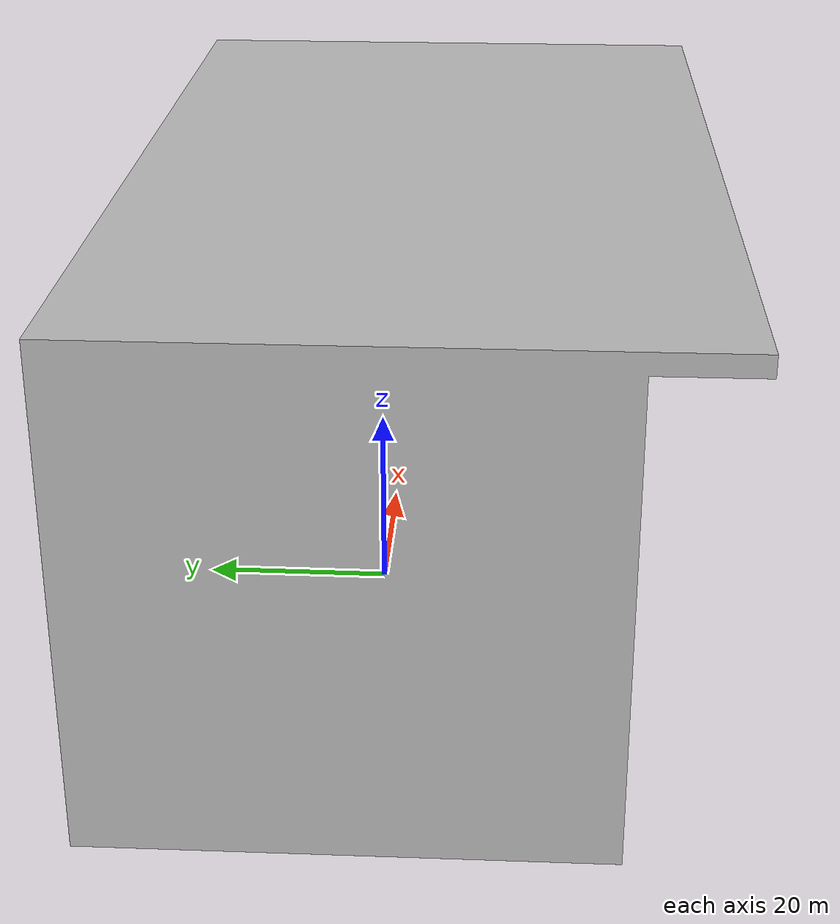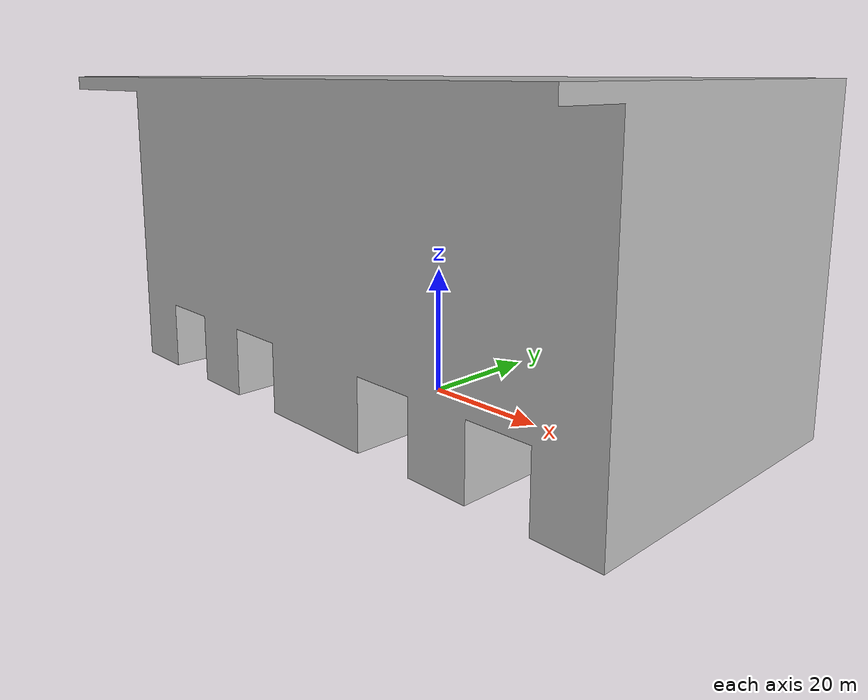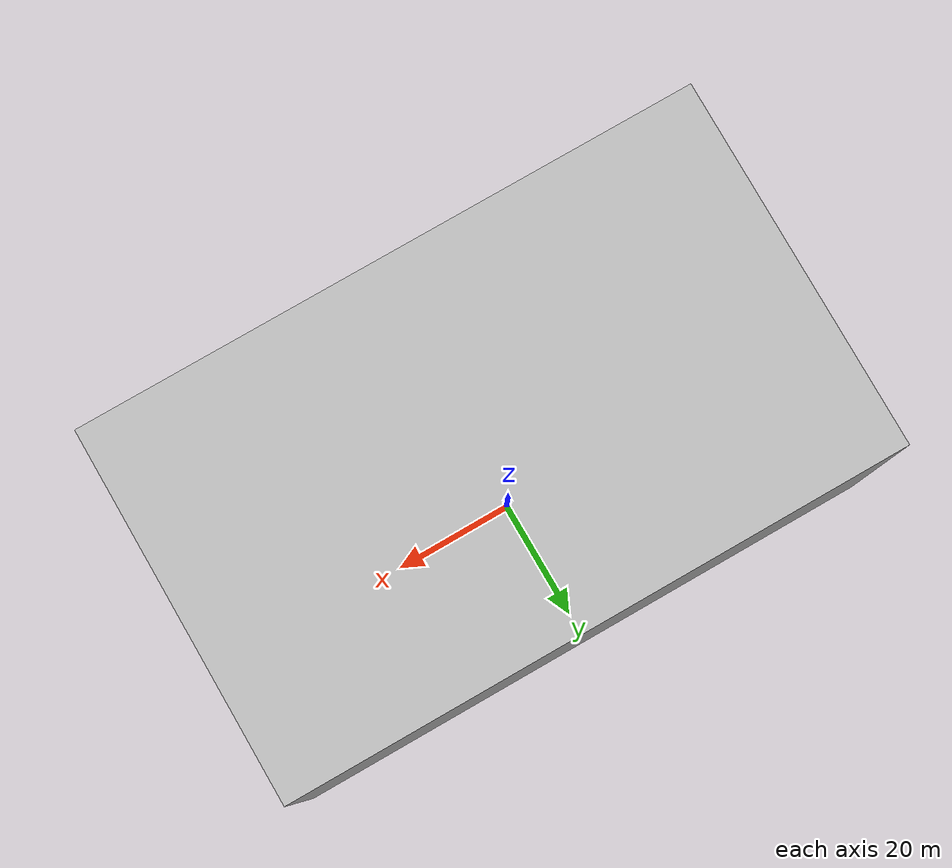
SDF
<sdf version='1.6'>
  <model name='garage'>
    <static>true</static>
    <link name='base_link'>
      <pose frame=''>0 0 0 0 -0 0</pose>
      <inertial>
        <pose frame=''>-0 0.28926 26.281 0 -0 0</pose>
        <mass>2.3894e+08</mass>
        <inertia>
          <ixx>9.9392e+10</ixx>
          <ixy>9.293e-06</ixy>
          <ixz>-6.0303e-06</ixz>
          <iyy>2.4818e+11</iyy>
          <iyz>4.1423e+09</iyz>
          <izz>2.5208e+11</izz>
        </inertia>
      </inertial>
      <collision name='base_link_collision'>
        <pose frame=''>0 0 0 0 -0 0</pose>
        <geometry>
          <mesh>
            <scale>1 1 1</scale>
            <uri>model://garage/meshes/base_link.STL</uri>
          </mesh>
        </geometry>
      </collision>
      <visual name='base_link_visual'>
        <pose frame=''>0 0 0 0 -0 0</pose>
        <geometry>
          <mesh>
            <scale>1 1 1</scale>
            <uri>model://garage/meshes/base_link.STL</uri>
          </mesh>
        </geometry>
      </visual>
    </link>
  </model>
</sdf>
